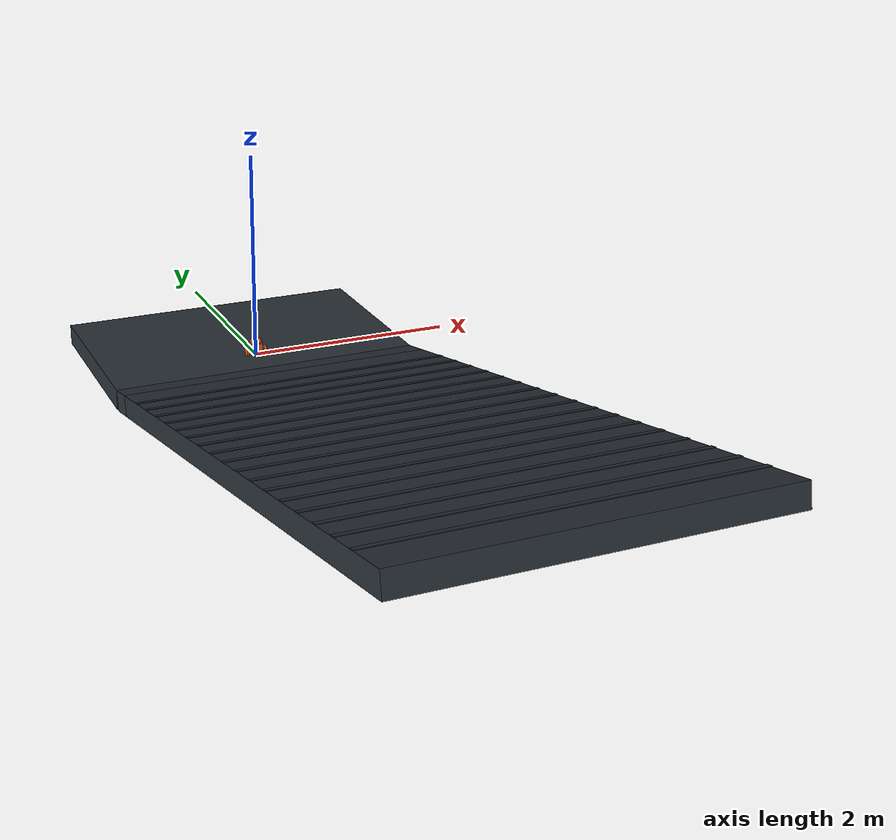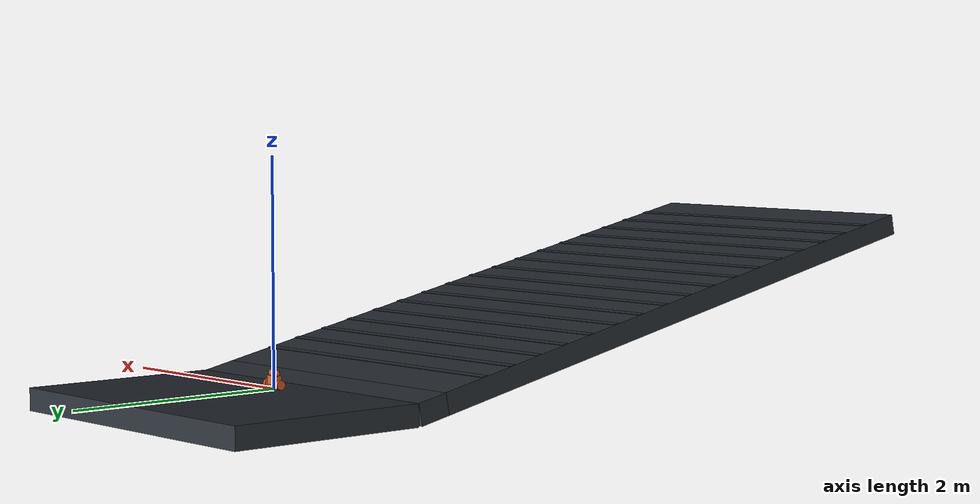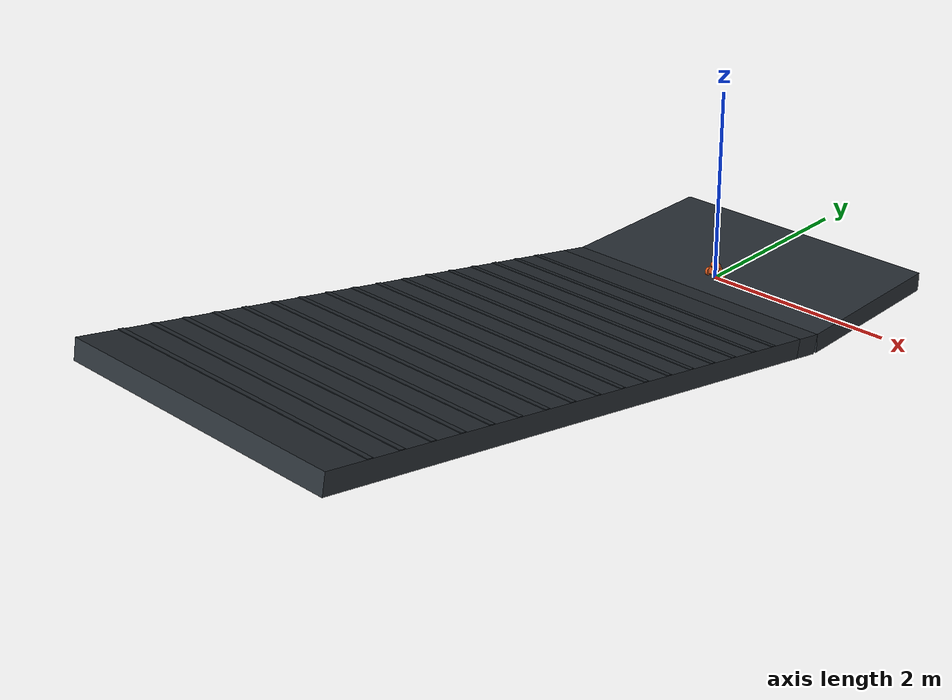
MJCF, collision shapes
<mujoco model="Stage4B rbase_ep_023_train_p12p0">
  <compiler angle="radian" meshdir="../../../../assets/upstream_local" />
  <option timestep="0.001" integrator="implicitfast" gravity="0 0 -9.81" />
  <statistic center="0 0 0.05" extent="0.28" />
  <default>
    <default class="visual">
      <geom contype="0" conaffinity="0" group="2" />
    </default>
    <default class="collision">
      <geom group="3" rgba="0.85 0.35 0.12 0.25" solref="0.005 1" solimp="0.9 0.95 0.001" />
    </default>
  </default>
  <asset>
    <texture name="ground_tex" type="2d" builtin="checker" rgb1="0.22 0.25 0.28" rgb2="0.12 0.14 0.16" width="256" height="256" />
    <material name="ground_mat" texture="ground_tex" texrepeat="4 4" reflectance="0.15" />
    <mesh name="main_frame_mesh" file="main_frame.stl" scale="0.001 0.001 0.001" />
    <mesh name="wheel_base_mesh" file="wheel_base.stl" scale="0.001 0.001 0.001" />
    <mesh name="cover_mesh" file="cover.stl" scale="0.001 0.001 0.001" />
    <mesh name="motor_left_mesh" file="motor_left.stl" scale="0.001 0.001 0.001" />
    <mesh name="motor_right_mesh" file="motor_right.stl" scale="0.001 0.001 0.001" />
    <mesh name="mc33926_mesh" file="mc33926.stl" scale="0.001 0.001 0.001" />
    <mesh name="wheel_mesh" file="wheel.stl" scale="0.001 0.001 0.001" />
    <mesh name="adapter_left_mesh" file="adapter_left.stl" scale="0.001 0.001 0.001" />
    <mesh name="adapter_right_mesh" file="adapter_right.stl" scale="0.001 0.001 0.001" />
  </asset>
  <worldbody>
    <light pos="0 -0.5 0.8" dir="0 0.6 -1" diffuse="0.8 0.8 0.8" />
    <geom name="terrain_flat" type="box" pos="0 0.575 -0.1" size="1.5 0.925 0.1" material="ground_mat" friction="0.12 0.005 0.0001" condim="3" />
    <geom name="terrain_transition" type="box" pos="0 -0.517513309192 -0.0666280064507" euler="-0.209439510239 0 0" size="1.5 0.15 0.1" material="ground_mat" friction="0.12 0.005 0.0001" condim="3" />
    <geom name="terrain_constant_grade" type="box" pos="0 -3.5986782515 0.588293819625" euler="-0.209439510239 0 0" size="1.5 3 0.1" material="ground_mat" friction="0.12 0.005 0.0001" condim="3" />
    <geom name="terrain_rough_00" type="box" pos="0 -1.08298696548 0.158868210916" euler="-0.209439510239 0 0" size="1.5 0.0275 0.003" material="ground_mat" friction="0.12 0.005 0.0001" condim="3" />
    <geom name="terrain_rough_01" type="box" pos="0 -1.39599419771 0.225399951977" euler="-0.209439510239 0 0" size="1.5 0.0275 0.003" material="ground_mat" friction="0.12 0.005 0.0001" condim="3" />
    <geom name="terrain_rough_02" type="box" pos="0 -1.70900142995 0.291931693039" euler="-0.209439510239 0 0" size="1.5 0.0275 0.003" material="ground_mat" friction="0.12 0.005 0.0001" condim="3" />
    <geom name="terrain_rough_03" type="box" pos="0 -2.02200866218 0.358463434101" euler="-0.209439510239 0 0" size="1.5 0.0275 0.003" material="ground_mat" friction="0.12 0.005 0.0001" condim="3" />
    <geom name="terrain_rough_04" type="box" pos="0 -2.33501589442 0.424995175162" euler="-0.209439510239 0 0" size="1.5 0.0275 0.003" material="ground_mat" friction="0.12 0.005 0.0001" condim="3" />
    <geom name="terrain_rough_05" type="box" pos="0 -2.64802312665 0.491526916224" euler="-0.209439510239 0 0" size="1.5 0.0275 0.003" material="ground_mat" friction="0.12 0.005 0.0001" condim="3" />
    <geom name="terrain_rough_06" type="box" pos="0 -2.96103035889 0.558058657286" euler="-0.209439510239 0 0" size="1.5 0.0275 0.003" material="ground_mat" friction="0.12 0.005 0.0001" condim="3" />
    <geom name="terrain_rough_07" type="box" pos="0 -3.27403759112 0.624590398347" euler="-0.209439510239 0 0" size="1.5 0.0275 0.003" material="ground_mat" friction="0.12 0.005 0.0001" condim="3" />
    <geom name="terrain_rough_08" type="box" pos="0 -3.58704482336 0.691122139409" euler="-0.209439510239 0 0" size="1.5 0.0275 0.003" material="ground_mat" friction="0.12 0.005 0.0001" condim="3" />
    <geom name="terrain_rough_09" type="box" pos="0 -3.90005205559 0.757653880471" euler="-0.209439510239 0 0" size="1.5 0.0275 0.003" material="ground_mat" friction="0.12 0.005 0.0001" condim="3" />
    <geom name="terrain_rough_10" type="box" pos="0 -4.21305928783 0.824185621532" euler="-0.209439510239 0 0" size="1.5 0.0275 0.003" material="ground_mat" friction="0.12 0.005 0.0001" condim="3" />
    <geom name="terrain_rough_11" type="box" pos="0 -4.52606652006 0.890717362594" euler="-0.209439510239 0 0" size="1.5 0.0275 0.003" material="ground_mat" friction="0.12 0.005 0.0001" condim="3" />
    <geom name="terrain_rough_12" type="box" pos="0 -4.8390737523 0.957249103656" euler="-0.209439510239 0 0" size="1.5 0.0275 0.003" material="ground_mat" friction="0.12 0.005 0.0001" condim="3" />
    <geom name="terrain_rough_13" type="box" pos="0 -5.15208098453 1.02378084472" euler="-0.209439510239 0 0" size="1.5 0.0275 0.003" material="ground_mat" friction="0.12 0.005 0.0001" condim="3" />
    <geom name="terrain_rough_14" type="box" pos="0 -5.46508821677 1.09031258578" euler="-0.209439510239 0 0" size="1.5 0.0275 0.003" material="ground_mat" friction="0.12 0.005 0.0001" condim="3" />
    <geom name="terrain_rough_15" type="box" pos="0 -5.778095449 1.15684432684" euler="-0.209439510239 0 0" size="1.5 0.0275 0.003" material="ground_mat" friction="0.12 0.005 0.0001" condim="3" />
    <geom name="terrain_rough_16" type="box" pos="0 -6.09110268123 1.2233760679" euler="-0.209439510239 0 0" size="1.5 0.0275 0.003" material="ground_mat" friction="0.12 0.005 0.0001" condim="3" />
    <body name="chassis" pos="0 0 0.043">
      <freejoint name="root" />
      <inertial pos="0.0001592717873 -0.001394466535 0.03368627387" mass="0.8173706489" fullinertia="0.0009508052638 0.001636345835 0.0009938057434 -1.163464906e-07 -4.840496598e-06 3.454944565e-05" />
      <geom name="main_frame_visual" class="visual" type="mesh" mesh="main_frame_mesh" rgba="0.12 0.42 0.72 1" />
      <geom name="wheel_base_visual" class="visual" type="mesh" mesh="wheel_base_mesh" rgba="0.95 0.50 0.10 1" />
      <geom name="cover_visual" class="visual" type="mesh" mesh="cover_mesh" rgba="0.18 0.72 0.32 0.72" />
      <geom name="motor_left_visual" class="visual" type="mesh" mesh="motor_left_mesh" rgba="0.45 0.47 0.50 1" />
      <geom name="motor_right_visual" class="visual" type="mesh" mesh="motor_right_mesh" rgba="0.45 0.47 0.50 1" />
      <geom name="mc33926_visual" class="visual" type="mesh" mesh="mc33926_mesh" rgba="0.08 0.36 0.18 1" />
      <geom name="battery_1_visual" class="visual" type="box" pos="0 -0.012 0.038" size="0.035 0.007 0.025" rgba="0.15 0.25 0.75 1" />
      <geom name="battery_2_visual" class="visual" type="box" pos="0 0.012 0.038" size="0.035 0.007 0.025" rgba="0.15 0.25 0.75 1" />
      <geom name="electronics_lump_visual" class="visual" type="box" pos="0 -0.024 0.067" size="0.035 0.006 0.0425" rgba="0.10 0.42 0.20 0.65" />
      <geom name="wheel_base_collision" class="collision" type="box" pos="0 0.0005 0.0042" size="0.074 0.0201 0.0198" />
      <geom name="lower_chassis_collision" class="collision" type="box" pos="0.001 -0.0015 0.038" size="0.0595 0.0325 0.038" />
      <geom name="upper_chassis_collision" class="collision" type="capsule" fromto="-0.024 -0.0015 0.096 0.026 -0.0015 0.096" size="0.033" />
      <site name="imu_site" type="box" pos="0 0 0.020" quat="1 0 0 0" size="0.004 0.003 0.001" rgba="1 0.15 0.05 1" />
      <body name="left_wheel" pos="-0.0885 0 0">
        <joint name="left_wheel_hinge" type="hinge" axis="1 0 0" damping="0.002" frictionloss="0.002" />
        <inertial pos="0.001407549168 -2.310217342e-08 4.024972882e-05" mass="0.1051" fullinertia="8.559060347e-05 4.760138372e-05 4.763051958e-05 2.677568832e-11 -3.525425309e-08 -1.463149106e-11" />
        <geom name="left_wheel_visual" class="visual" type="mesh" mesh="wheel_mesh" rgba="0.04 0.05 0.06 1" />
        <geom name="left_adapter_visual" class="visual" type="mesh" mesh="adapter_left_mesh" rgba="0.12 0.48 0.82 1" />
        <geom name="left_wheel_collision" class="collision" type="cylinder" size="0.042 0.012" quat="0.7071067812 0 0.7071067812 0" friction="0.12 0.005 0.0001" />
      </body>
      <body name="right_wheel" pos="0.0885 0 0">
        <joint name="right_wheel_hinge" type="hinge" axis="1 0 0" damping="0.002" frictionloss="0.002" />
        <inertial pos="-0.001407437868 -2.310217342e-08 -4.019113045e-05" mass="0.1051" fullinertia="8.559060397e-05 4.760141714e-05 4.763055251e-05 -2.601653908e-11 -3.526339188e-08 1.57007511e-11" />
        <geom name="right_wheel_visual" class="visual" type="mesh" mesh="wheel_mesh" rgba="0.04 0.05 0.06 1" />
        <geom name="right_adapter_visual" class="visual" type="mesh" mesh="adapter_right_mesh" rgba="0.12 0.48 0.82 1" />
        <geom name="right_wheel_collision" class="collision" type="cylinder" size="0.042 0.012" quat="0.7071067812 0 0.7071067812 0" friction="0.12 0.005 0.0001" />
      </body>
    </body>
  </worldbody>
  <actuator>
    <motor name="left_wheel_torque" joint="left_wheel_hinge" gear="1" ctrllimited="true" ctrlrange="-0.63 0.63" forcelimited="true" forcerange="-0.63 0.63" />
    <motor name="right_wheel_torque" joint="right_wheel_hinge" gear="1" ctrllimited="true" ctrlrange="-0.63 0.63" forcelimited="true" forcerange="-0.63 0.63" />
  </actuator>
  <sensor>
    <accelerometer name="imu_accelerometer" site="imu_site" />
    <gyro name="imu_gyro" site="imu_site" />
    <jointpos name="left_wheel_angle" joint="left_wheel_hinge" />
    <jointpos name="right_wheel_angle" joint="right_wheel_hinge" />
  </sensor>
  <keyframe>
    <key name="upright" qpos="0 0 0.043 1 0 0 0 0 0" />
  </keyframe>
</mujoco>
